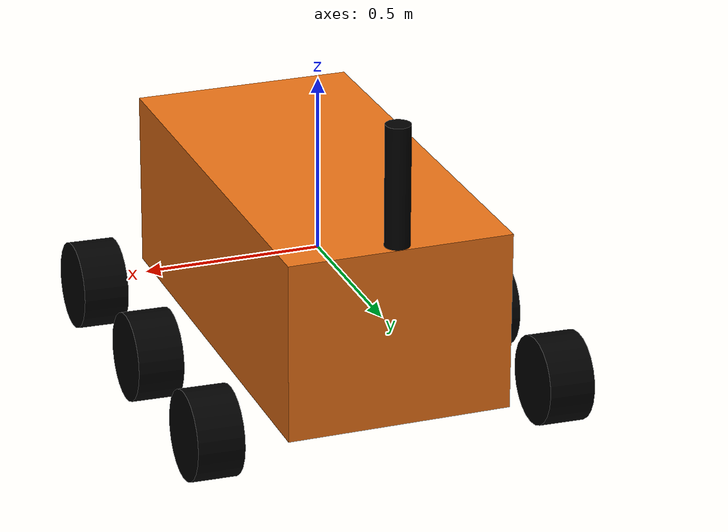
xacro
<?xml version="1.0" encoding="UTF-8"?>

<robot xmlns:xacro="http://www.ros.org/wiki/xacro" name="rover">

   <!--Base Link-->
    <link name="base_link">
        <visual>
            <geometry>
                <box size=".63 1.29 .505" />
            </geometry>
            <origin xyz="0 0 0" rpy="0 0 0" />
            <material name="orange">
                <color rgba="0.913 0.443 0.086 1" />
            </material>
        </visual>
        <collision>
            <geometry>
                <box size=".63 1.29 .505" />
            </geometry>
            <origin xyz="0 0 0" rpy="0 0 0" />
        </collision>
        <inertial>
            <mass value="1.0"/>
            <inertia ixx="0.159927083333" ixy="0" ixz="0" iyy="0.0543270833333" iyz="0" izz="0.17175" />
        </inertial>
   </link>

   <!--Lidar Macro-->
    <!--Spawn Lidar-->

    <!--Wheel Macro-->
    <xacro:macro name="wheel" params="prefix reflectx offsety">
        <link name="${prefix}_wheel">
            <visual>
            <geometry>
                <cylinder length="0.13" radius="0.125" />
            </geometry>
            <origin xyz="${reflectx*0.5} 0 0" rpy="0 1.55 0" />
            <material name="black">
               <color rgba="0 0 0 1" />
            </material>
         </visual>
        <collision>
            <geometry>
                <cylinder length="0.13" radius="0.125" />
            </geometry>
            <origin xyz="${reflectx*0.5} 0 0" rpy="0 1.55 0" />
        </collision>
        <inertial>
            <mass value="0.1"/>
            <inertia ixx="0.00078125" ixy="0" ixz="0" iyy="0.000531458333333" iyz="0" izz="0.000531458333333" />
        </inertial>
        </link>

        <joint name="base_to_${prefix}_wheel" type="continuous">
            <parent link="base_link" />
            <child link="${prefix}_wheel" />
            <origin xyz="0 ${offsety} -0.25" />
            <axis xyz="1 0 0" />
        </joint>
   </xacro:macro>

   <!--Spawn Wheels-->
   <xacro:wheel prefix="R1" reflectx="1" offsety="0.52" />
   <xacro:wheel prefix="R2" reflectx="1" offsety="0" />
   <xacro:wheel prefix="R3" reflectx="1" offsety="-0.52" />
   <xacro:wheel prefix="L1" reflectx="-1" offsety="0.52" />
   <xacro:wheel prefix="L2" reflectx="-1" offsety="0" />
   <xacro:wheel prefix="L3" reflectx="-1" offsety="-0.52" />

   <!--Lidar Supprt Rod-->
   <link name="lidar_support_rod">
        <visual>
            <geometry>
                <cylinder length="0.34" radius="0.035" />
            </geometry>
            <origin xyz="0 0.61 0.4225" />
            <material name="black">
                <color rgba="0 0 0 1" />
            </material>
        </visual>
        <collision>
            <geometry>
                <cylinder length="0.34" radius="0.035" />
            </geometry>
            <origin xyz="0 0.61 0.4225" />
        </collision>

   </link>

   <joint name="base_to_lidar_support_rod" type="fixed">
      <parent link="base_link" />
      <child link="lidar_support_rod" />
   </joint>

<gazebo>
    <plugin name="differential_drive_controller"
    filename="libgazebo_ros_diff_drive.so">
    <leftJoint>base_to_R2_wheel</leftJoint>
    <rightJoint>base_to_L2_wheel</rightJoint>
    <robotBaseFrame>base_link</robotBaseFrame>
    <wheelSeparation>0.63</wheelSeparation>
    <wheelDiameter>0.25</wheelDiameter>
    <publishWheelJointState>true</publishWheelJointState>
    </plugin>
</gazebo>

</robot>
